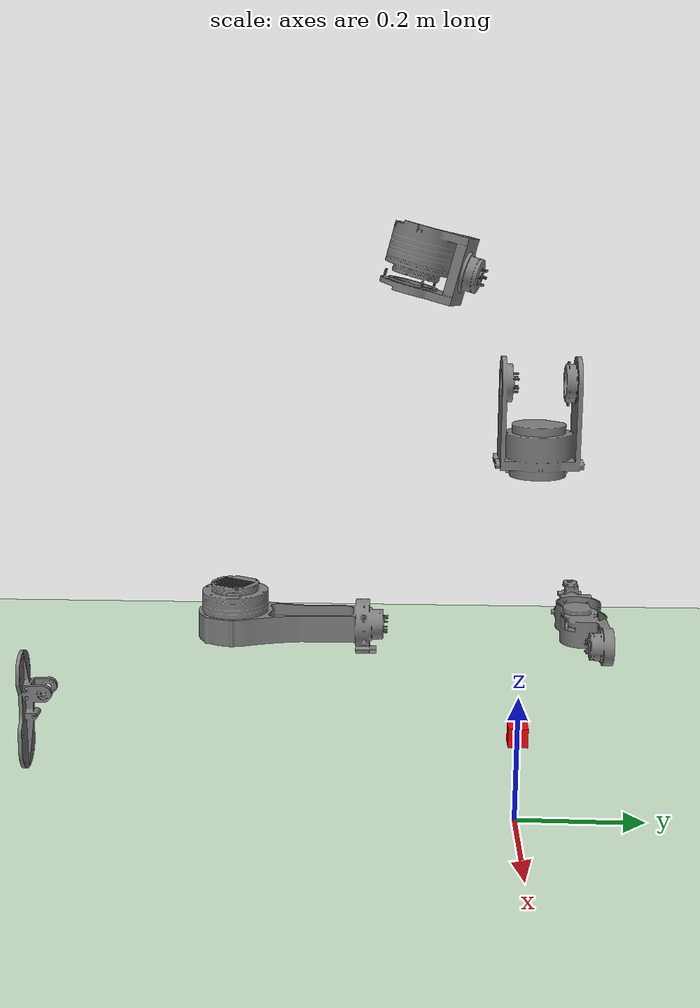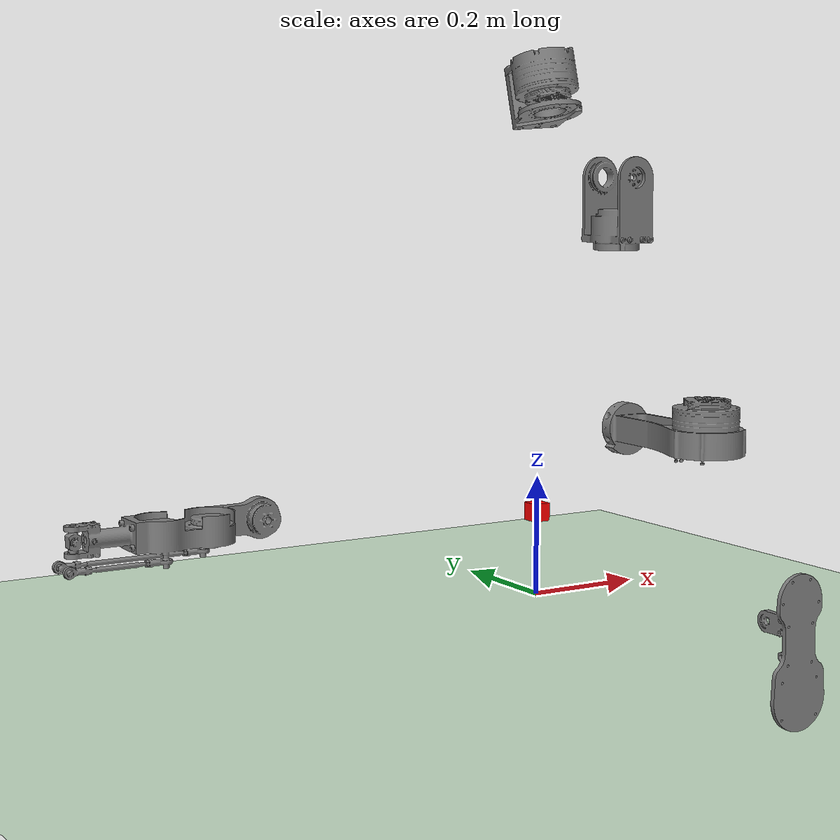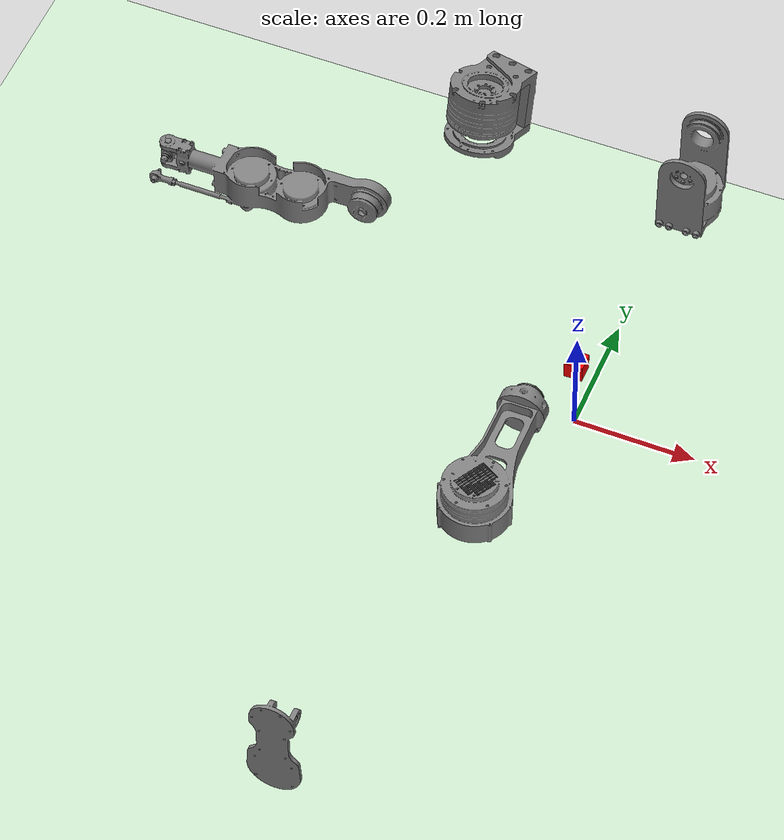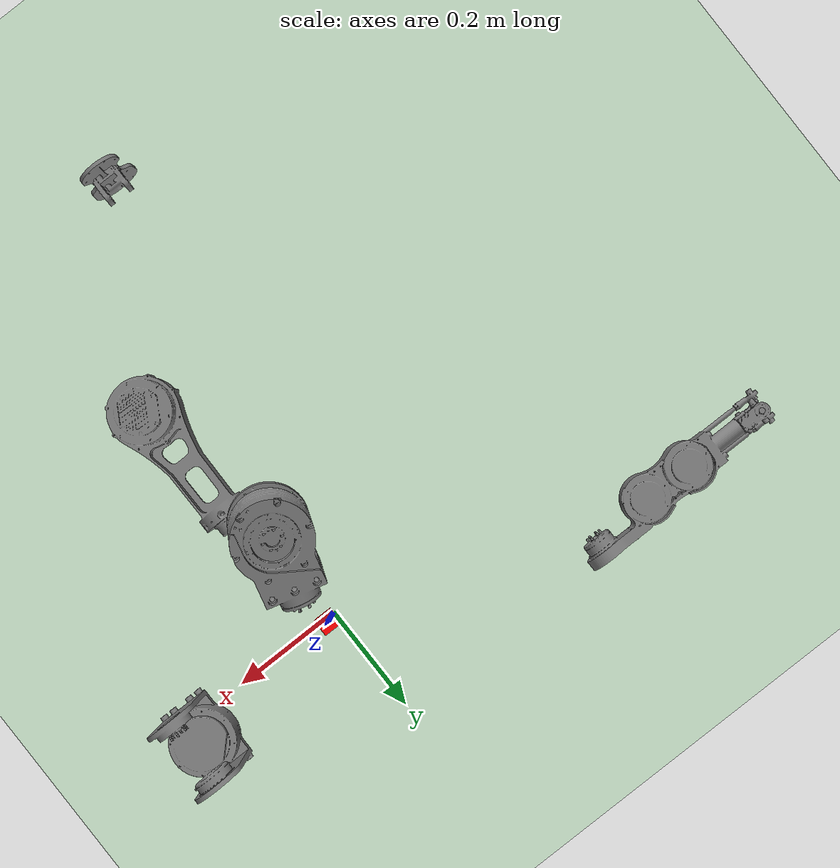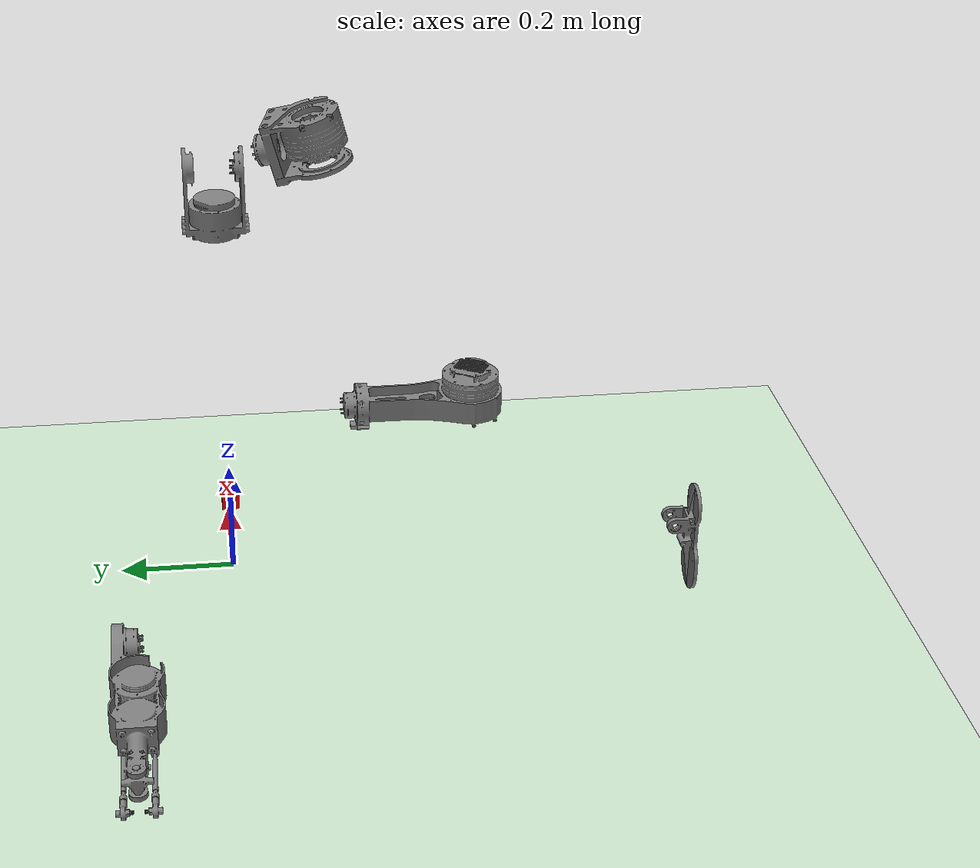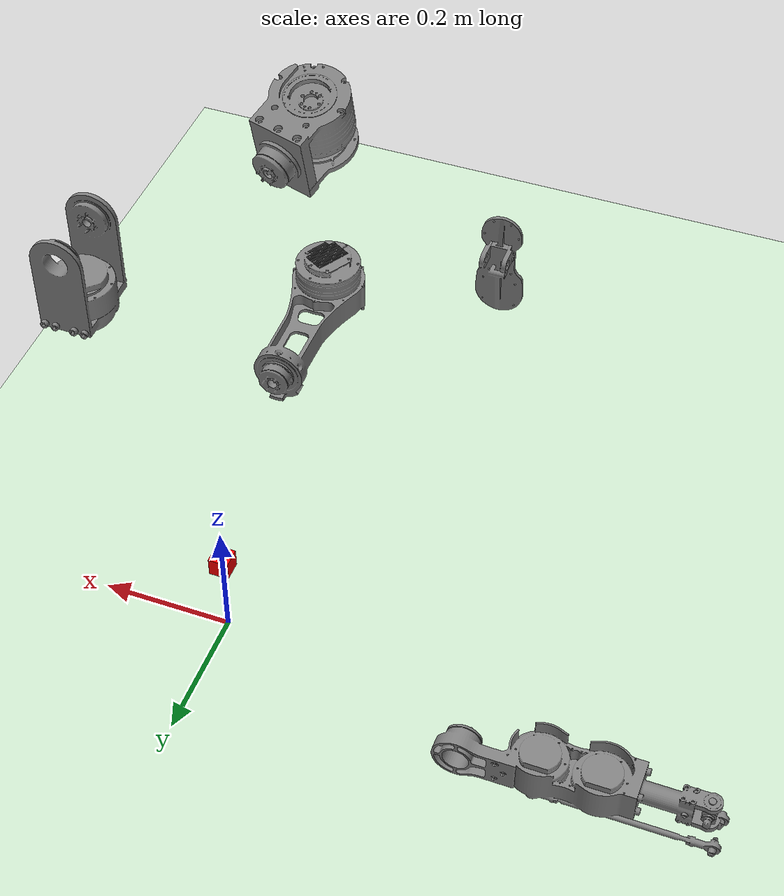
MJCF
<mujoco model="Bipedal_Final">
    <option gravity="0 0 -9.81" />
    <compiler angle="degree" meshdir="meshes/" autolimits="true" />
    <!-- discardvisual="True"  -->

    <option timestep="0.001"></option>
    <statistic extent="0.3" center="0.3 0 0" meansize=".03" />

    <contact>
        <pair geom1="ground" geom2="Left_Foot" solimp="0.99 0.99 0.0001" solref="0.0001 1" />
    </contact>

    <default>
        <geom type="mesh" />
    </default>
    <default>
        <default class="visual">
            <geom contype="0" conaffinity="0" group="0" density="0" rgba="0.5 0.5 0.5 1" />
        </default>
        <default class="transparent">
            <geom contype="0" conaffinity="0" group="0" density="0" rgba="0.5 0.5 0.5 0.3" />
        </default>
        <default class="collision">
            <geom group="0" rgba="0.7 0.7 0.7 1" />
        </default>
    </default>

    <default>
        <default class="AK8064_actuator">
            <joint damping="0.02" armature="0.231" frictionloss="4.8" />
        </default>

        <default class="AK7010_actuator">
            <joint damping="0.015" armature="0.00414" frictionloss="0.5" />
        </default>

        <default class="AK109_actuator">
            <joint damping="0.03" armature="0.00812" frictionloss="0.5" />
        </default>

        <default class="AK606_actuator">
            <joint damping="0.02" armature="0.00088" frictionloss="0.25" />
        </default>
    </default>

    <!--   Fusion outputs meshes with mm units by default, but must be converted to m in MuJoCo, hence
    the scaling   -->
  <asset>
    <mesh name="Left_Hip_Pitch_1" file="Left_Hip_Pitch_1.stl" scale="0.001 0.001 0.001"/>
    <mesh name="Left_Link2_Hip_1" file="Left_Link2_Hip_1.stl" scale="0.001 0.001 0.001"/>
    <mesh name="Left_Thigh_1" file="Left_Thigh_1.stl" scale="0.001 0.001 0.001"/>
    <mesh name="Left_Shank_1" file="Left_Shank_1.stl" scale="0.001 0.001 0.001"/>
    <mesh name="Left_Ankle_Roll_1" file="Left_Ankle_Roll_1.stl" scale="0.001 0.001 0.001"/>
    <mesh name="Left_Foot_1" file="Left_Foot_1.stl" scale="0.001 0.001 0.001"/>
  </asset>
    <visual>
        <headlight diffuse="0.6 0.6 0.6" ambient="0.3 0.3 0.3" specular="0 0 0" />
        <rgba haze="0.15 0.25 0.35 1" />
        <global azimuth="-130" elevation="-20" />
    </visual>

    <asset>
        <texture builtin="gradient" height="100" rgb1=".4 .5 .6" rgb2="0 0 0" type="skybox" width="100" />
        <texture name="texplane" type="2d" builtin="checker" rgb1=".2 .3 .4" rgb2=".1 0.15 0.2" width="100" height="100" />
        <material name="MatPlane" reflectance="0.1" texture="texplane" texrepeat="1 1" texuniform="true" />
    </asset>

    <worldbody>
        <geom name="ground" pos="0 0 0" size="5 5 0.05" type="plane" material = "MatPlane" friction= "1 1 0.1" condim="3" conaffinity="1" contype="1" group="2" rgba="0.8 0.9 0.8 1" />

        <light cutoff="1000" diffuse="1 1 1" dir="-0 0 -1.3" directional="true" exponent="1" pos="0 0 1.3" specular=".1 .1 .1" castshadow="false" />

        <!--   Left leg kinematic chain  -->
        <body name="Left_Link1_Hip" pos="0 0 0.8" euler="90 90 75">
            <joint type="hinge" name="Left_Hip_Pitch" axis="0 -1 0" pos="0 0 0" range="-80 80" class = "AK109_actuator"/>
            <geom type="mesh" class="visual" mesh="Left_Hip_Pitch_1" />
            <inertial pos="0.579E-3 15.782E-3 5.535E-3" mass="1.764" fullinertia="3.489E-3 2.287E-3 3.317E-3 -1125.189E-9 5446.612E-9 1.532E-4" />

                <body name="Left_Link2_Hip" pos="0 0 0" euler="90 105 0">
                    <joint type="hinge" name="Left_Hip_Roll" axis="0 1 0" pos="0 0 0" range="-15 60" class = "AK109_actuator"/>
                    <geom type="mesh" class="visual" mesh="Left_Link2_Hip_1" />
                    <inertial pos="0.016E-3 -0.136E-3 -73.241E-3" mass="1.2918" fullinertia="3.152E-3 2.359E-3 1.975E-3 -943.829E-9 3429.47E-9 -927.06E-9" />

                        <body name="Left_Link3_Thigh" pos="0 0 -324E-3" euler="-90 -90 0">
                            <joint type="hinge" name="Left_Hip_Yaw" axis="0 -1 0" pos="0 -220E-3 0" range="-40 40" class = "AK7010_actuator"/>
                            <geom type="mesh" class="visual" mesh="Left_Thigh_1" />
                            <inertial pos="0.028E-3 -32.607E-3 -12.468E-3" mass="1.983" fullinertia="1.116E-2 2.158E-3 1.159E-2 -752.04E-9 2449.992E-9 7.911E-4" />

                            <body name="Left_Link4_Shank" pos="0 335E-3 0" euler="90 90 0">
                                <joint type="hinge" name="Left_Knee" axis="0 1 0" pos="-335E-3 0 0" range="-5 120" class = "AK109_actuator"/>
                                <geom type="mesh" class="visual" mesh="Left_Shank_1" />
                                <inertial pos="-171.211E-3 3.585E-3 9.70E-3" mass="1.894" fullinertia="1.510E-3 1.663E-2 1.681E-2 8.897E-4 -8.447E-4 31714.412E-9" />

                                <body name="Left_Link5_AnkleRoll" pos="0 0 0" euler="0 0 0">
                                    <joint type="hinge" name="Left_Ankle_Roll" axis="0 0 1" pos="0 0 0" range="-30 30" class = "AK606_actuator"/>
                                    <geom type="mesh" class="visual" mesh="Left_Ankle_Roll_1" />
                                    <inertial pos="0 0 0" mass="40.313E-3" fullinertia="7009E-9 3498.104E-9 5125.014E-9 0 0 0" />

                                    <body name="Left_Link6_Foot" pos="0 0 0" euler="-90 0 0">
                                        <joint type="hinge" name="Left_Ankle_Pitch" axis="0 0 1" pos="0 0 0" range="-50 30" class = "AK606_actuator"/>
                                        <geom name = "Left_Foot" type="mesh" class="visual" mesh="Left_Foot_1" />
                                        <inertial pos="30.483E-3 -29.106E-3 0" mass="343.229E-3" fullinertia="9.434E-4 1.546E-4 8.770E-4 50230.908E-9 -40.36E-9 9.97E-9" />
                                        <site name="Left_Force_Torque_Sensor" type = "box" pos="0 0 0" euler="0 -90 -90" size="0.015 0.015 0.015" rgba="1 0 0 1"/>
                                    </body>
                                </body>
                            </body>
                        </body>
                </body>
        </body>
    </worldbody>

    <actuator>
        <motor name="Left_Hip_Pitch_m" joint="Left_Hip_Pitch" ctrlrange="-48 48" />
        <motor name="Left_Hip_Roll_m" joint="Left_Hip_Roll" ctrlrange="-48 48" />
        <motor name="Left_Hip_Yaw_m" joint="Left_Hip_Yaw" ctrlrange="-16 16" />
        <motor name="Left_Knee_m" joint="Left_Knee" ctrlrange="-48 48" />
        <motor name="Left_Ank_Roll_m" joint="Left_Ankle_Roll" ctrlrange="-18 18" />
        <motor name="Left_Ank_Pitch_m" joint="Left_Ankle_Pitch" ctrlrange="-18 18" />
    </actuator>
</mujoco>
